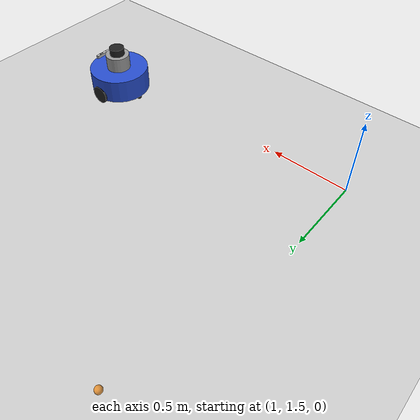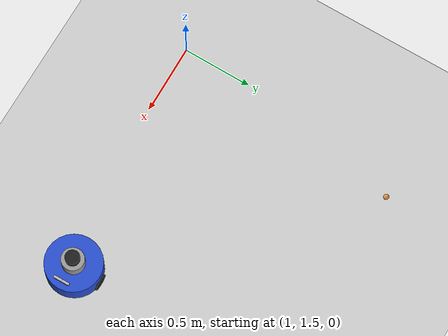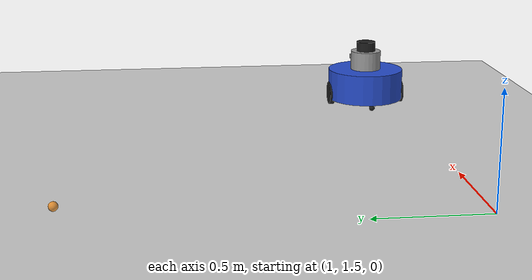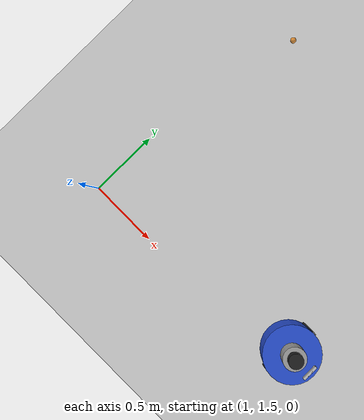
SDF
<sdf version="1.6">
 <world name="default">
  <model name="ground_plane">
   <static>1</static>
   <link name="link">
    <collision name="collision">
     <geometry><plane><normal>0 0 1</normal><size>100 100</size></plane></geometry>
     <surface><friction><ode><mu>100</mu><mu2>50</mu2></ode></friction></surface>
    </collision>
    <visual name="visual">
     <cast_shadows>0</cast_shadows>
     <geometry><plane><normal>0 0 1</normal><size>100 100</size></plane></geometry>
     <material>
      <script><uri>file://media/materials/scripts/gazebo.material</uri><name>Gazebo/Grey</name></script>
     </material>
    </visual>
   </link>
  </model>
  <model name="mbot">
   <link name="base_footprint">
    <inertial>
     <pose>0 0 0.136713 0 -0 0</pose>
     <mass>25.1</mass>
     <inertia><ixx>0.335625</ixx><ixy>0</ixy><ixz>0</ixz><iyy>0.335625</iyy><iyz>0</iyz><izz>0.426</izz></inertia>
    </inertial>
    <collision name="base_footprint_fixed_joint_lump__base_link_collision">
     <pose>0 0 0.11 0 -0 0</pose>
     <geometry><cylinder><length>0.16</length><radius>0.2</radius></cylinder></geometry>
    </collision>
    <collision name="base_footprint_fixed_joint_lump__kinect_link_collision_1">
     <pose>0.15 0 0.22 0 -0 0</pose>
     <geometry><box><size>0.07 0.3 0.09</size></box></geometry>
    </collision>
    <collision name="base_footprint_fixed_joint_lump__top_stage_link_collision_2">
     <pose>0 0 0.24 0 -0 0</pose>
     <geometry><cylinder><length>0.1</length><radius>0.08</radius></cylinder></geometry>
    </collision>
    <collision name="base_footprint_fixed_joint_lump__laser_link_collision_3">
     <pose>0 0 0.315 0 -0 0</pose>
     <geometry><cylinder><length>0.06</length><radius>0.05</radius></cylinder></geometry>
    </collision>
    <visual name="base_footprint_visual">
     <geometry><box><size>0.001 0.001 0.001</size></box></geometry>
     <material><script><uri>__default__</uri><name>__default__</name></script></material>
    </visual>
    <visual name="base_footprint_fixed_joint_lump__base_link_visual_1">
     <pose>0 0 0.11 0 -0 0</pose>
     <geometry><cylinder><length>0.16</length><radius>0.2</radius></cylinder></geometry>
     <material>
      <script><name>Gazebo/Blue</name><uri>file://media/materials/scripts/gazebo.material</uri></script>
     </material>
    </visual>
    <visual name="base_footprint_fixed_joint_lump__kinect_link_visual_2">
     <pose>0.15 0 0.22 0 -0 1.5708</pose>
     <geometry>
      <mesh><scale>1 1 1</scale><uri>/home/hyh/mc_ws/src/mbot_description_gazebo/meshes/kinect.dae</uri></mesh>
     </geometry>
     <material><script><uri>__default__</uri><name>__default__</name></script></material>
    </visual>
    <visual name="base_footprint_fixed_joint_lump__top_stage_link_visual_3">
     <pose>0 0 0.24 0 -0 0</pose>
     <geometry><cylinder><length>0.1</length><radius>0.08</radius></cylinder></geometry>
     <material>
      <script><name>Gazebo/Grey</name><uri>file://media/materials/scripts/gazebo.material</uri></script>
     </material>
    </visual>
    <visual name="base_footprint_fixed_joint_lump__laser_link_visual_4">
     <pose>0 0 0.315 0 -0 0</pose>
     <geometry><cylinder><length>0.05</length><radius>0.05</radius></cylinder></geometry>
     <material>
      <script><name>Gazebo/Black</name><uri>file://media/materials/scripts/gazebo.material</uri></script>
     </material>
    </visual>
    <sensor name="kinect" type="depth">
     <always_on>1</always_on>
     <update_rate>20</update_rate>
     <camera name="__default__">
      <horizontal_fov>1.0472</horizontal_fov>
      <image><format>R8G8B8</format><width>640</width><height>480</height></image>
      <clip><near>0.05</near><far>8</far></clip>
     </camera>
     <plugin name="kinect_kinect_controller" filename="libgazebo_ros_openni_kinect.so">
      <cameraName>kinect</cameraName>
      <alwaysOn>true</alwaysOn>
      <updateRate>10</updateRate>
      <imageTopicName>rgb/image_raw</imageTopicName>
      <depthImageTopicName>depth/image_raw</depthImageTopicName>
      <pointCloudTopicName>depth/points</pointCloudTopicName>
      <cameraInfoTopicName>rgb/camera_info</cameraInfoTopicName>
      <depthImageCameraInfoTopicName>depth/camera_info</depthImageCameraInfoTopicName>
      <frameName>kinect_frame_optical</frameName>
      <baseline>0.1</baseline>
      <distortion_k1>0.0</distortion_k1>
      <distortion_k2>0.0</distortion_k2>
      <distortion_k3>0.0</distortion_k3>
      <distortion_t1>0.0</distortion_t1>
      <distortion_t2>0.0</distortion_t2>
      <pointCloudCutoff>0.4</pointCloudCutoff>
      <robotNamespace>/mbot/</robotNamespace>
     </plugin>
     <pose>0.15 0 0.22 0 -0 0</pose>
    </sensor>
    <sensor name="rplidar" type="ray">
     <visualize>0</visualize>
     <update_rate>5.5</update_rate>
     <ray>
      <scan>
       <horizontal>
        <samples>360</samples>
        <resolution>1</resolution>
        <min_angle>-3</min_angle>
        <max_angle>3</max_angle>
       </horizontal>
       <vertical><samples>1</samples><min_angle>0</min_angle><max_angle>0</max_angle></vertical>
      </scan>
      <range><min>0.1</min><max>6</max><resolution>0.01</resolution></range>
      <noise><type>gaussian</type><mean>0</mean><stddev>0.01</stddev></noise>
     </ray>
     <plugin name="gazebo_rplidar" filename="libgazebo_ros_laser.so">
      <topicName>/scan</topicName>
      <frameName>laser_link</frameName>
      <robotNamespace>/mbot/</robotNamespace>
     </plugin>
     <pose>0 0 0.315 0 -0 0</pose>
    </sensor>
   </link>
   <link name="back_caster_link">
    <pose>0.18 0 0.015 0 -0 0</pose>
    <inertial>
     <mass>0.5</mass>
     <inertia><ixx>4.5e-05</ixx><ixy>0</ixy><ixz>0</ixz><iyy>4.5e-05</iyy><iyz>0</iyz><izz>4.5e-05</izz></inertia>
    </inertial>
    <collision name="back_caster_link_collision">
     <geometry><sphere><radius>0.015</radius></sphere></geometry>
    </collision>
    <visual name="back_caster_link_visual">
     <geometry><sphere><radius>0.015</radius></sphere></geometry>
     <material>
      <script><name>Gazebo/Black</name><uri>file://media/materials/scripts/gazebo.material</uri></script>
     </material>
    </visual>
   </link>
   <joint name="back_caster_joint" type="revolute">
    <child>back_caster_link</child>
    <parent>base_footprint</parent>
    <axis>
     <xyz>0 1 0</xyz>
     <limit><lower>-1e+16</lower><upper>1e+16</upper></limit>
     <dynamics><spring_reference>0</spring_reference><spring_stiffness>0</spring_stiffness></dynamics>
     <use_parent_model_frame>1</use_parent_model_frame>
    </axis>
   </joint>
   <link name="front_caster_link">
    <pose>-0.18 0 0.015 0 -0 0</pose>
    <inertial>
     <mass>0.5</mass>
     <inertia><ixx>4.5e-05</ixx><ixy>0</ixy><ixz>0</ixz><iyy>4.5e-05</iyy><iyz>0</iyz><izz>4.5e-05</izz></inertia>
    </inertial>
    <collision name="front_caster_link_collision">
     <geometry><sphere><radius>0.015</radius></sphere></geometry>
    </collision>
    <visual name="front_caster_link_visual">
     <geometry><sphere><radius>0.015</radius></sphere></geometry>
     <material>
      <script><name>Gazebo/Black</name><uri>file://media/materials/scripts/gazebo.material</uri></script>
     </material>
    </visual>
   </link>
   <joint name="front_caster_joint" type="revolute">
    <child>front_caster_link</child>
    <parent>base_footprint</parent>
    <axis>
     <xyz>0 1 0</xyz>
     <limit><lower>-1e+16</lower><upper>1e+16</upper></limit>
     <dynamics><spring_reference>0</spring_reference><spring_stiffness>0</spring_stiffness></dynamics>
     <use_parent_model_frame>1</use_parent_model_frame>
    </axis>
   </joint>
   <link name="left_wheel_link">
    <pose>0 -0.19 0.06 0 -0 0</pose>
    <inertial>
     <mass>2</mass>
     <inertia>
      <ixx>0.00190417</ixx>
      <ixy>0</ixy>
      <ixz>0</ixz>
      <iyy>0.00190417</iyy>
      <iyz>0</iyz>
      <izz>0.0036</izz>
     </inertia>
    </inertial>
    <collision name="left_wheel_link_collision">
     <pose>0 0 0 1.5708 -0 0</pose>
     <geometry><cylinder><length>0.025</length><radius>0.06</radius></cylinder></geometry>
    </collision>
    <visual name="left_wheel_link_visual">
     <pose>0 0 0 1.5708 -0 0</pose>
     <geometry><cylinder><length>0.025</length><radius>0.06</radius></cylinder></geometry>
     <material>
      <script><name>Gazebo/Black</name><uri>file://media/materials/scripts/gazebo.material</uri></script>
     </material>
    </visual>
   </link>
   <joint name="left_wheel_joint" type="revolute">
    <child>left_wheel_link</child>
    <parent>base_footprint</parent>
    <axis>
     <xyz>0 1 0</xyz>
     <limit><lower>-1e+16</lower><upper>1e+16</upper></limit>
     <dynamics><spring_reference>0</spring_reference><spring_stiffness>0</spring_stiffness></dynamics>
     <use_parent_model_frame>1</use_parent_model_frame>
    </axis>
   </joint>
   <link name="right_wheel_link">
    <pose>0 0.19 0.06 0 -0 0</pose>
    <inertial>
     <mass>2</mass>
     <inertia>
      <ixx>0.00190417</ixx>
      <ixy>0</ixy>
      <ixz>0</ixz>
      <iyy>0.00190417</iyy>
      <iyz>0</iyz>
      <izz>0.0036</izz>
     </inertia>
    </inertial>
    <collision name="right_wheel_link_collision">
     <pose>0 0 0 1.5708 -0 0</pose>
     <geometry><cylinder><length>0.025</length><radius>0.06</radius></cylinder></geometry>
    </collision>
    <visual name="right_wheel_link_visual">
     <pose>0 0 0 1.5708 -0 0</pose>
     <geometry><cylinder><length>0.025</length><radius>0.06</radius></cylinder></geometry>
     <material>
      <script><name>Gazebo/Black</name><uri>file://media/materials/scripts/gazebo.material</uri></script>
     </material>
    </visual>
   </link>
   <joint name="right_wheel_joint" type="revolute">
    <child>right_wheel_link</child>
    <parent>base_footprint</parent>
    <axis>
     <xyz>0 1 0</xyz>
     <limit><lower>-1e+16</lower><upper>1e+16</upper></limit>
     <dynamics><spring_reference>0</spring_reference><spring_stiffness>0</spring_stiffness></dynamics>
     <use_parent_model_frame>1</use_parent_model_frame>
    </axis>
   </joint>
   <static>0</static>
   <plugin name="gazebo_ros_control" filename="libgazebo_ros_control.so">
    <robotNamespace>/mbot</robotNamespace>
    <robotSimType>gazebo_ros_control/DefaultRobotHWSim</robotSimType>
    <legacyModeNS>true</legacyModeNS>
   </plugin>
   <pose>2.72524 1.66311 0 -0 -2e-06 0.012443</pose>
  </model>
  <model name="table_tennis_13">
   <link name="link">
    <pose>0 0 0.02 0 -0 0</pose>
    <inertial>
     <mass>0.0027</mass>
     <inertia><ixx>0.00027</ixx><ixy>0</ixy><ixz>0</ixz><iyy>0.00027</iyy><iyz>0</iyz><izz>0.00027</izz></inertia>
    </inertial>
    <visual name="visual">
     <geometry><sphere><radius>0.02</radius></sphere></geometry>
     <material>
      <script><name>Gazebo/Orange</name><uri>file://media/materials/scripts/gazebo.material</uri></script>
      <shader type="vertex"><normal_map>__default__</normal_map></shader>
     </material>
     <cast_shadows>0</cast_shadows>
     <transparency>0.22</transparency>
    </visual>
    <collision name="collision">
     <geometry><sphere><radius>0.02</radius></sphere></geometry>
     <surface>
      <friction>
       <ode><mu>1</mu><mu2>1</mu2><fdir1>0 0 0</fdir1><slip1>0</slip1><slip2>0</slip2></ode>
       <torsional>
        <coefficient>1</coefficient>
        <patch_radius>0</patch_radius>
        <surface_radius>0</surface_radius>
        <use_patch_radius>1</use_patch_radius>
        <ode><slip>0</slip></ode>
       </torsional>
      </friction>
      <bounce><restitution_coefficient>0</restitution_coefficient><threshold>1e+06</threshold></bounce>
      <contact>
       <collide_without_contact>0</collide_without_contact>
       <collide_without_contact_bitmask>1</collide_without_contact_bitmask>
       <collide_bitmask>1</collide_bitmask>
       <ode>
        <soft_cfm>0</soft_cfm>
        <soft_erp>0.2</soft_erp>
        <kp>1e+13</kp>
        <kd>1</kd>
        <max_vel>0.01</max_vel>
        <min_depth>0</min_depth>
       </ode>
       <bullet>
        <split_impulse>1</split_impulse>
        <split_impulse_penetration_threshold>-0.01</split_impulse_penetration_threshold>
        <soft_cfm>0</soft_cfm>
        <soft_erp>0.2</soft_erp>
        <kp>1e+13</kp>
        <kd>1</kd>
       </bullet>
      </contact>
     </surface>
    </collision>
   </link>
   <static>0</static>
   <pose>1.2021 3.20529 0.023495 1.79614 -0.672846 1.43621</pose>
  </model>
 </world>
</sdf>
